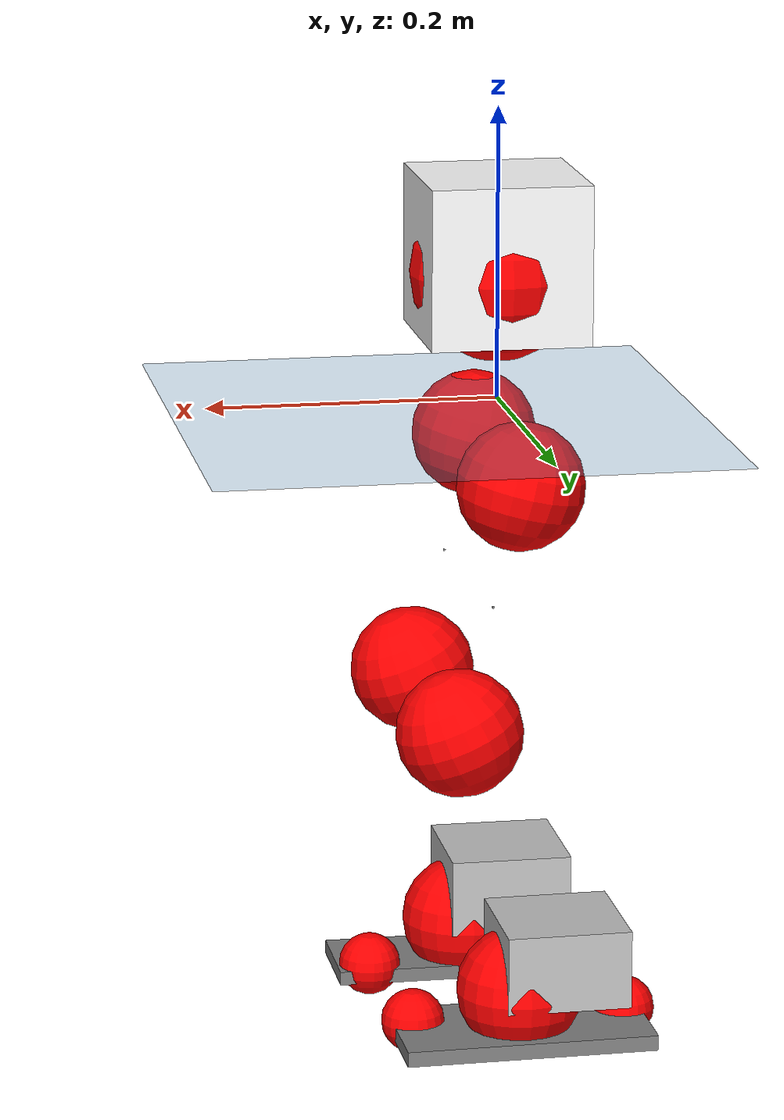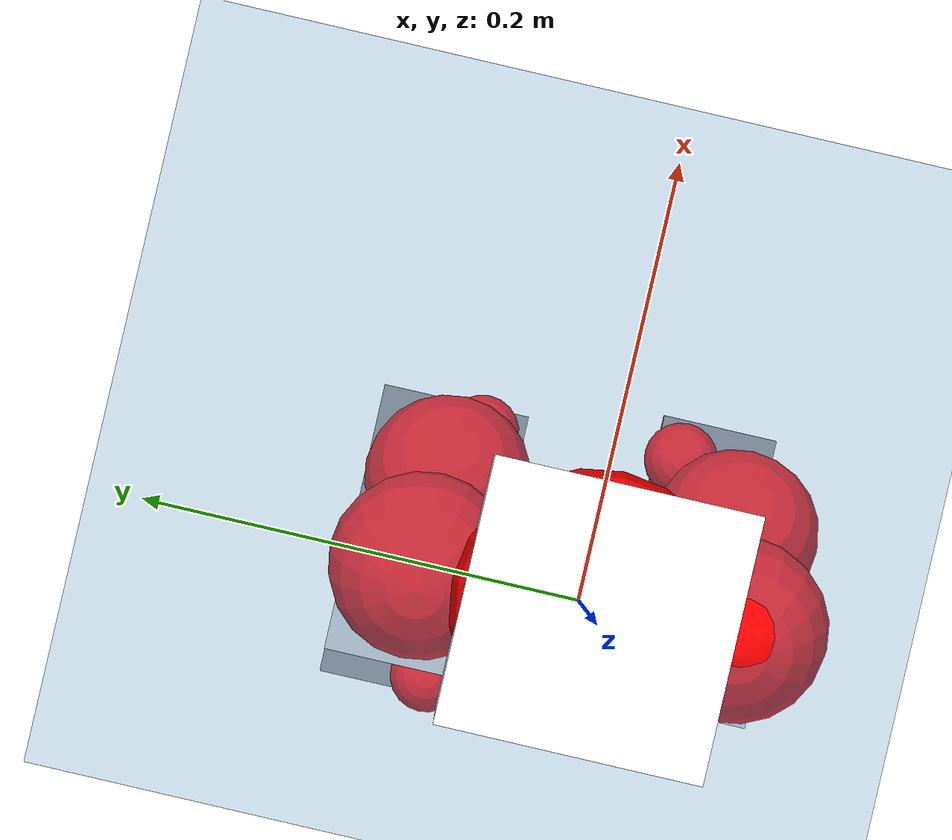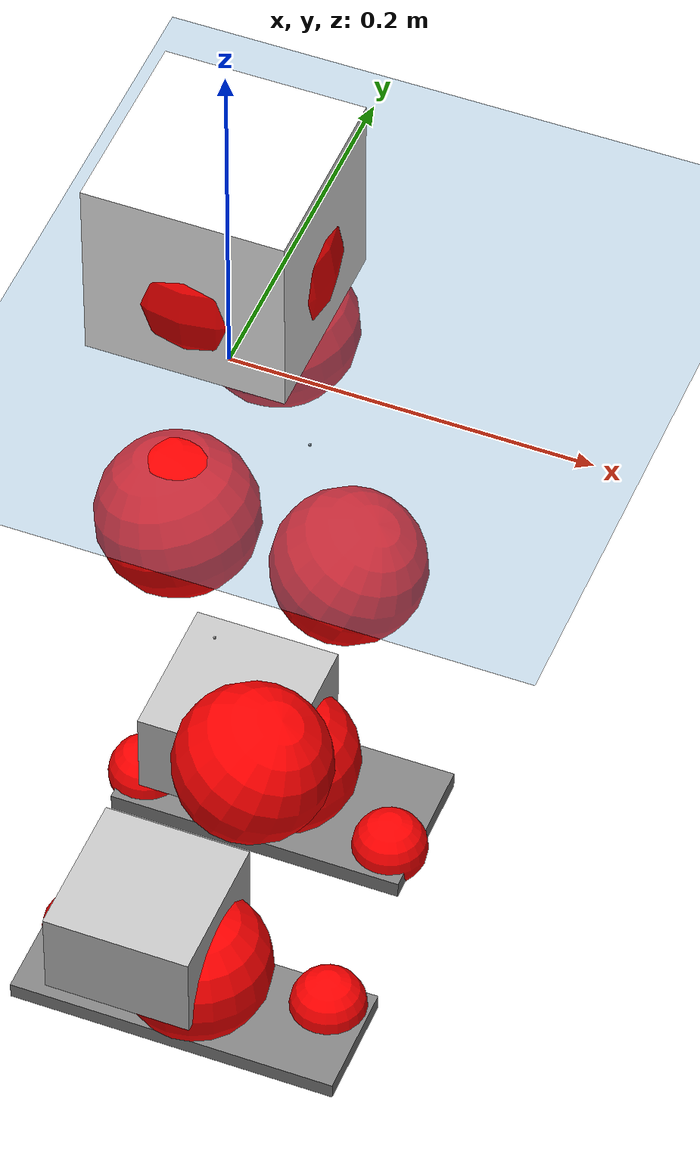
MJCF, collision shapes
<mujoco model="pi_12dof_release_v1">
  <compiler angle="radian" assetdir="assets" balanceinertia="true" inertiafromgeom="false"/>

  <option timestep="0.005" density="1.2" viscosity="2e-05"/>

  <size nkey="1"/>

  <visual>
    <quality shadowsize="8192"/>
    <map shadowclip="0.5"/>
  </visual>

  <default>
    <default class="/">
      <joint armature="0.01" damping="0.01" frictionloss="0.01"/>
      <geom contype="0" conaffinity="0" group="1" solref="-1000 -80"/>
      <site size="0.01 0.005 0.005" group="5"/>
      <general forcelimited="true" biastype="affine" gainprm="20" biasprm="0 -20 -0.5"/>
      <default class="foot">
        <geom size="0.0845 0.036 0.005" type="box" condim="6" group="4" priority="1" friction="0.9 0.2 0.2" solimp="0.015 1 0.005"/>
      </default>
      <default class="reward_collision_sphere">
        <geom group="5" rgba="1 0 0 1"/>
      </default>
    </default>
  </default>

  <asset>
    <texture type="skybox" colorspace="auto" name="//unnamed_texture_0" builtin="gradient" rgb1="0.95 0.95 0.95" rgb2="0.95 0.95 0.95" width="100" height="600"/>
    <texture type="2d" colorspace="auto" name="texplane" builtin="checker" rgb1="0.345 0.575 0.748" rgb2="0.345 0.575 0.748" markrgb="1 1 1" width="512" height="512"/>
    <material name="MatPlane" class="/" texture="texplane" texuniform="true" texrepeat="2 2" specular="0.9"/>
    <mesh name="baselink_1" class="/" file="baselink_1.STL"/>
    <mesh name="r_hip_pitch_link" class="/" file="r_hip_pitch_link.STL"/>
    <mesh name="r_hip_roll_link" class="/" file="r_hip_roll_link.STL"/>
    <mesh name="r_thigh_link" class="/" file="r_thigh_link.STL"/>
    <mesh name="r_calf_link" class="/" file="r_calf_link.STL"/>
    <mesh name="r_ankle_pitch_link" class="/" file="r_ankle_pitch_link.STL"/>
    <mesh name="r_ankle_roll_link" class="/" file="r_ankle_roll_link.STL"/>
    <mesh name="l_hip_pitch_link" class="/" file="l_hip_pitch_link.STL"/>
    <mesh name="l_hip_roll_link" class="/" file="l_hip_roll_link.STL"/>
    <mesh name="l_thigh_link" class="/" file="l_thigh_link.STL"/>
    <mesh name="l_calf_link" class="/" file="l_calf_link.STL"/>
    <mesh name="l_ankle_pitch_link" class="/" file="l_ankle_pitch_link.STL"/>
    <mesh name="l_ankle_roll_link" class="/" file="l_ankle_roll_link.STL"/>
  </asset>

  <worldbody>
    <geom name="floor" class="/" size="100 100 0.125" type="plane" group="0" material="MatPlane"/>
    <light name="toplight_shadow" class="/" pos="0 0 5" dir="0.0990148 0.0990148 -0.990148" type="directional" ambient="0.04 0.04 0.04" diffuse="0.55 0.55 0.55" specular="0.12 0.12 0.12"/>
    <light name="toplight_fill" class="/" pos="0 0 5" dir="0.0990148 0.0990148 -0.990148" type="directional" castshadow="false" ambient="0.04 0.04 0.04" diffuse="0.3 0.3 0.3" specular="0.08 0.08 0.08"/>
    <body name="trunk" pos="-0.000263118 -0.00279135 -0.000985772" quat="1 4.53188e-06 5.38843e-07 2.62694e-06">
      <inertial pos="0.00351127 -0.0029045 0.0501908" quat="0.698699 0.011006 0.011937 0.715232" mass="2.78142" diaginertia="0.0148568 0.00633846 0.0125356"/>
      <joint name="//unnamed_joint_0" type="free"/>
      <geom name="//unnamed_geom_1" class="/" type="mesh" density="0" rgba="1 1 1 1" mesh="baselink_1"/>
      <geom name="//unnamed_geom_2" class="/" size="0.0546485 0.0546485 0.0546485" pos="0 0 0.0998172" type="box" rgba="1 1 1 1"/>
      <geom name="//unnamed_geom_3" class="reward_collision_sphere" size="0.0601134" pos="0 0 0.08734"/>
      <site name="imu" class="/" pos="0.0141078 0.0127796 -0.0139644" size="0.0109297"/>
      <camera name="track" class="/" pos="0 -1.87356 0" quat="0.707107 0.707107 0 0" mode="trackcom"/>
      <camera name="ego_camera" class="/" pos="0.0820814 0 0.224589" quat="-0.5 -0.5 0.5 0.5"/>
      <body name="r_hip_pitch_link" pos="0.00262017 -0.0202974 -0.0393106" quat="0.992228 -0.00125733 -0.124427 -0.000311159">
        <inertial pos="0.00186641 -0.0528715 0.00258334" quat="-0.0195919 0.704369 -0.0330977 0.708791" mass="0.46518" diaginertia="0.000170244 6.76514e-05 0.000250129"/>
        <joint name="r_hip_pitch_joint" class="/" pos="0 0 0" axis="0.000533048 -0.999998 0.00205982" range="-1.74438 1.1988" armature="0.0110528" damping="0.0158902" frictionloss="0.010918"/>
        <geom name="//unnamed_geom_4" class="/" type="mesh" density="0" rgba="0.75294 0.75294 0.75294 1" mesh="r_hip_pitch_link"/>
        <geom name="//unnamed_geom_5" class="/" size="0.000546485 0.000546485 0.000546485" type="box" rgba="0.75294 0.75294 0.75294 1"/>
        <body name="r_hip_roll_link" pos="-0.000714538 -0.051593 -0.000961011" quat="0.999999 -4.50296e-05 -0.000809182 0.00119578">
          <inertial pos="0.0013966 0.00272885 -0.0765797" quat="0.697459 -0.0789096 -0.0873712 0.706888" mass="0.506324" diaginertia="0.000514903 0.000198734 0.000382954"/>
          <joint name="r_hip_roll_joint" class="/" pos="0 0 0" axis="-0.999904 0.0136048 -0.00249166" range="-0.12756 0.550669" armature="0.00929569" damping="0.01993" frictionloss="0.0113313"/>
          <geom name="//unnamed_geom_6" class="/" type="mesh" density="0" rgba="0.75294 0.75294 0.75294 1" mesh="r_hip_roll_link"/>
          <geom name="//unnamed_geom_7" class="/" size="0.000546485 0.000546485 0.000546485" type="box" rgba="0.75294 0.75294 0.75294 1"/>
          <geom name="//unnamed_geom_8" class="reward_collision_sphere" size="0.0437188"/>
          <body name="r_thigh_link" pos="-0.00150411 -0.00184128 -0.08731" quat="0.999999 -0.000517999 -0.00113303 -0.000393457">
            <inertial pos="0.00323157 0.000957849 -0.0607955" quat="0.737775 0.675046 -0.000756036 4.99313e-05" mass="0.149726" diaginertia="0.000190112 7.02367e-05 0.000171972"/>
            <joint name="r_thigh_joint" class="/" pos="0 0 0" axis="-0.000657987 -0.000592714 -1" range="-0.358093 0.59025" armature="0.00995186" damping="0.00206582" frictionloss="0.011222"/>
            <geom name="//unnamed_geom_9" class="/" type="mesh" density="0" rgba="0.75294 0.75294 0.75294 1" mesh="r_thigh_link"/>
            <geom name="//unnamed_geom_10" class="/" size="0.000546485 0.000546485 0.000546485" type="box" rgba="0.75294 0.75294 0.75294 1"/>
            <body name="r_calf_link" pos="1.28289e-05 -0.00350505 -0.0889907" quat="0.947646 4.70128e-06 0.319322 -0.000123414">
              <inertial pos="-0.00207346 -0.000954221 -0.0872106" quat="0.999966 -0.00498448 -0.00192635 0.00629828" mass="1.0175" diaginertia="0.00541685 0.00245973 0.00053951"/>
              <joint name="r_calf_joint" class="/" pos="0 0 0" axis="0.00945684 -0.999929 0.00722372" range="-1.62731 0.695647" armature="0.0108833" damping="0.00878795" frictionloss="0.012157"/>
              <geom name="//unnamed_geom_11" class="/" type="mesh" density="0" rgba="0.75294 0.75294 0.75294 1" mesh="r_calf_link"/>
              <geom name="//unnamed_geom_12" class="/" size="0.000546485 0.000546485 0.000546485" type="box" rgba="0.75294 0.75294 0.75294 1"/>
              <geom name="//unnamed_geom_13" class="reward_collision_sphere" size="0.0437188"/>
              <body name="r_ankle_pitch_link" pos="0.00258993 0.00152098 -0.171644" quat="0.980227 8.35294e-05 -0.197874 -0.000505347">
                <inertial pos="0.00292335 0.00194793 0.000769492" quat="-0.00425833 0.715305 -0.00252881 0.698795" mass="0.245738" diaginertia="0.000493435 0.00016574 0.000367529"/>
                <joint name="r_ankle_pitch_joint" class="/" pos="0 0 0" axis="-0.00626679 -0.999948 0.00801354" range="-1.25332 0.541919" armature="0.0106748" damping="0.0226622" frictionloss="0.0102211"/>
                <geom name="//unnamed_geom_14" class="/" type="mesh" density="0" rgba="0.75294 0.75294 0.75294 1" mesh="r_ankle_pitch_link"/>
                <geom name="//unnamed_geom_15" class="/" size="0.0426259 0.0437188 0.0273243" type="box" rgba="0.75294 0.75294 0.75294 1"/>
                <body name="r_ankle_roll_link" pos="0.0819297 0.00199303 -0.0022268" quat="0.999999 -0.000577901 -0.000119368 0.00111212">
                  <inertial pos="-0.0243411 0.000781853 -0.0153137" quat="0.567704 0.428576 0.438673 0.549181" mass="0.668983" diaginertia="0.00177109 0.000742455 0.000865016"/>
                  <joint name="r_ankle_roll_joint" class="/" pos="0 0 0" axis="-1 6.26662e-05 -0.000608736" stiffness="0.00286521" range="-0.183454 0.162199" armature="0.0108772" damping="0.00287282" frictionloss="0.00965806"/>
                  <geom name="//unnamed_geom_16" class="/" type="mesh" density="0" rgba="0.75294 0.75294 0.75294 1" mesh="r_ankle_roll_link"/>
                  <geom name="//unnamed_geom_17" class="/" type="mesh" rgba="0.75294 0.75294 0.75294 1" mesh="r_ankle_roll_link"/>
                  <geom name="right_foot" class="foot" size="0.0955959 0.0339797 0.00485004" pos="-0.0558154 0 -0.0548994"/>
                  <geom name="//unnamed_geom_19" class="reward_collision_sphere" size="0.0437188" pos="-0.0547209 0 -0.0249543"/>
                  <geom name="//unnamed_geom_20" class="reward_collision_sphere" size="0.0218594" pos="0.0164163 0.0187356 -0.0499086"/>
                  <geom name="//unnamed_geom_21" class="reward_collision_sphere" size="0.0218594" pos="-0.13133 0.0187356 -0.0499086"/>
                  <site name="right_foot" class="foot" pos="-0.0558154 0 -0.0548994" size="0.0109297"/>
                </body>
              </body>
            </body>
          </body>
        </body>
      </body>
      <body name="l_hip_pitch_link" pos="0.000282276 0.0221999 -0.0415833" quat="0.992202 0.000453268 -0.124635 -0.000246424">
        <inertial pos="0.00170517 0.0480806 0.00203024" quat="-0.0389511 0.705984 0.0270858 0.706637" mass="0.523287" diaginertia="0.000205543 7.73717e-05 0.00030948"/>
        <joint name="l_hip_pitch_joint" class="/" pos="0 0 0" axis="-0.000293158 1 0.000270255" stiffness="0.00933997" range="-1.24769 1.74433" armature="0.0110985" damping="4.58301e-05" frictionloss="0.0124664"/>
        <geom name="//unnamed_geom_22" class="/" type="mesh" density="0" rgba="0.75294 0.75294 0.75294 1" mesh="l_hip_pitch_link"/>
        <geom name="//unnamed_geom_23" class="/" size="0.000546485 0.000546485 0.000546485" type="box" rgba="0.75294 0.75294 0.75294 1"/>
        <body name="l_hip_roll_link" pos="-0.00282223 0.0526646 -0.00139669" quat="1 2.57045e-05 -2.46368e-05 9.33404e-06">
          <inertial pos="-0.00332627 0.000968335 -0.0778521" quat="0.705078 -0.0691509 -0.069035 0.702366" mass="0.52378" diaginertia="0.000530575 0.000207991 0.000399975"/>
          <joint name="l_hip_roll_joint" class="/" pos="0 0 0" axis="-0.99992 -0.000471913 -0.0126598" stiffness="1.84994e-05" range="-0.541055 0.110519" armature="0.0123875" damping="0.00220547" frictionloss="0.0116633"/>
          <geom name="//unnamed_geom_24" class="/" type="mesh" density="0" rgba="0.75294 0.75294 0.75294 1" mesh="l_hip_roll_link"/>
          <geom name="//unnamed_geom_25" class="/" size="0.000546485 0.000546485 0.000546485" type="box" rgba="0.75294 0.75294 0.75294 1"/>
          <geom name="//unnamed_geom_26" class="reward_collision_sphere" size="0.0437188"/>
          <body name="l_thigh_link" pos="-0.0030853 -0.00154868 -0.0854162" quat="1 3.70242e-05 -1.41246e-06 -1.85715e-06">
            <inertial pos="0.000403679 -0.00154107 -0.0589813" quat="0.676081 0.736823 0.00045947 -0.0024236" mass="0.157206" diaginertia="0.000209069 7.10609e-05 0.000180287"/>
            <joint name="l_thigh_joint" class="/" pos="0 0 0" axis="0.000203299 0.000145021 -1" range="-0.619963 0.293508" armature="0.00939368" damping="0.0124622" frictionloss="0.0110997"/>
            <geom name="//unnamed_geom_27" class="/" type="mesh" density="0" rgba="0.75294 0.75294 0.75294 1" mesh="l_thigh_link"/>
            <geom name="//unnamed_geom_28" class="/" size="0.000546485 0.000546485 0.000546485" type="box" rgba="0.75294 0.75294 0.75294 1"/>
            <body name="l_calf_link" pos="0.000423898 0.000136294 -0.0897274" quat="0.947348 -0.000171792 0.320204 0.000794631">
              <inertial pos="0.00092746 0.00574773 -0.0901837" quat="0.999984 0.0031118 -0.000115634 0.00472387" mass="1.09171" diaginertia="0.00590728 0.0026496 0.0005594"/>
              <joint name="l_calf_joint" class="/" pos="0 0 0" axis="0.014545 0.999864 0.00774132" range="-0.654074 1.62262" armature="0.0112446" damping="0.00913149" frictionloss="0.0115428"/>
              <geom name="//unnamed_geom_29" class="/" type="mesh" density="0" rgba="0.75294 0.75294 0.75294 1" mesh="l_calf_link"/>
              <geom name="//unnamed_geom_30" class="/" size="0.000546485 0.000546485 0.000546485" type="box" rgba="0.75294 0.75294 0.75294 1"/>
              <geom name="//unnamed_geom_31" class="reward_collision_sphere" size="0.0437188"/>
              <body name="l_ankle_pitch_link" pos="0.000306192 0.00393004 -0.17401" quat="0.980154 0.00048994 -0.198233 0.000923956">
                <inertial pos="0.00559977 -0.00326632 0.00254078" quat="-0.00230988 0.707783 0.000972027 0.706425" mass="0.220925" diaginertia="0.000461443 0.000154638 0.000350655"/>
                <joint name="l_ankle_pitch_joint" class="/" pos="0 0 0" axis="-0.00246443 0.999996 -0.00117686" range="-0.560842 1.36021" armature="0.0103557" damping="0.00781447" frictionloss="0.0109823"/>
                <geom name="//unnamed_geom_32" class="/" type="mesh" density="0" rgba="0.75294 0.75294 0.75294 1" mesh="l_ankle_pitch_link"/>
                <geom name="//unnamed_geom_33" class="/" size="0.0426259 0.0437188 0.0273243" type="box" rgba="0.75294 0.75294 0.75294 1"/>
                <body name="l_ankle_roll_link" pos="0.0815216 0.00247833 0.00157348" quat="0.999999 6.53464e-05 0.000679035 0.000848498">
                  <inertial pos="-0.0248969 0.000127711 -0.0189335" quat="0.562529 0.424757 0.433069 0.561777" mass="0.687746" diaginertia="0.00183791 0.000743679 0.000857121"/>
                  <joint name="l_ankle_roll_joint" class="/" pos="0 0 0" axis="-0.999973 -0.00258649 -0.00683673" range="-0.120504 0.0966871" armature="0.0119904" damping="0.0209752" frictionloss="0.00952814"/>
                  <geom name="//unnamed_geom_34" class="/" type="mesh" density="0" rgba="0.75294 0.75294 0.75294 1" mesh="l_ankle_roll_link"/>
                  <geom name="//unnamed_geom_35" class="/" type="mesh" rgba="0.75294 0.75294 0.75294 1" mesh="l_ankle_roll_link"/>
                  <geom name="left_foot" class="foot" size="0.0868082 0.0436306 0.00528886" pos="-0.0558154 0 -0.0548994"/>
                  <geom name="//unnamed_geom_37" class="reward_collision_sphere" size="0.0437188" pos="-0.0547209 0 -0.0249543"/>
                  <geom name="//unnamed_geom_38" class="reward_collision_sphere" size="0.0218594" pos="0.0164163 -0.0187356 -0.0499086"/>
                  <geom name="//unnamed_geom_39" class="reward_collision_sphere" size="0.0218594" pos="-0.13133 -0.0187356 -0.0499086"/>
                  <site name="left_foot" class="foot" pos="-0.0558154 0 -0.0548994" size="0.0109297"/>
                </body>
              </body>
            </body>
          </body>
        </body>
      </body>
    </body>
  </worldbody>

  <contact>
    <pair class="/" geom1="floor" geom2="right_foot" name="//unnamed_contact_1"/>
    <pair class="/" geom1="floor" geom2="left_foot" name="//unnamed_contact_0"/>
  </contact>

  <actuator>
    <general name="r_hip_pitch_joint" class="/" joint="r_hip_pitch_joint" forcerange="-22.8139 22.8139" gainprm="20.4653" biasprm="0 -20.4653 -0.548081"/>
    <general name="r_hip_roll_joint" class="/" joint="r_hip_roll_joint" forcerange="-22.7218 22.7218" gainprm="20.4653" biasprm="0 -20.4653 -0.548081"/>
    <general name="r_thigh_joint" class="/" joint="r_thigh_joint" forcerange="-25.4451 25.4451" gainprm="20.4653" biasprm="0 -20.4653 -0.548081"/>
    <general name="r_calf_joint" class="/" joint="r_calf_joint" forcerange="-20.8449 20.8449" gainprm="20.4653" biasprm="0 -20.4653 -0.548081"/>
    <general name="r_ankle_pitch_joint" class="/" joint="r_ankle_pitch_joint" forcerange="-24.7256 24.7256" gainprm="20.4653" biasprm="0 -20.4653 -0.548081"/>
    <general name="r_ankle_roll_joint" class="/" joint="r_ankle_roll_joint" forcerange="-24.7121 24.7121" gainprm="20.4653" biasprm="0 -20.4653 -0.548081"/>
    <general name="l_hip_pitch_joint" class="/" joint="l_hip_pitch_joint" forcerange="-24.0025 24.0025" gainprm="20.4653" biasprm="0 -20.4653 -0.548081"/>
    <general name="l_hip_roll_joint" class="/" joint="l_hip_roll_joint" forcerange="-20.5595 20.5595" gainprm="20.4653" biasprm="0 -20.4653 -0.548081"/>
    <general name="l_thigh_joint" class="/" joint="l_thigh_joint" forcerange="-22.3368 22.3368" gainprm="20.4653" biasprm="0 -20.4653 -0.548081"/>
    <general name="l_calf_joint" class="/" joint="l_calf_joint" forcerange="-24.6908 24.6908" gainprm="20.4653" biasprm="0 -20.4653 -0.548081"/>
    <general name="l_ankle_pitch_joint" class="/" joint="l_ankle_pitch_joint" forcerange="-24.69 24.69" gainprm="20.4653" biasprm="0 -20.4653 -0.548081"/>
    <general name="l_ankle_roll_joint" class="/" joint="l_ankle_roll_joint" forcerange="-25.3477 25.3477" gainprm="20.4653" biasprm="0 -20.4653 -0.548081"/>
  </actuator>

  <sensor>
    <gyro site="imu" name="imu_angular_velocity"/>
    <velocimeter site="imu" name="imu_linear_velocity"/>
    <framelinvel objtype="site" objname="left_foot" name="left_foot_global_linear_velocity"/>
    <framelinvel objtype="site" objname="right_foot" name="right_foot_global_linear_velocity"/>
  </sensor>

  <keyframe>
    <key name="home" qpos="0 0 0.291 1 0 0 0 0.4 0 0 -0.8 0.4 0 -0.4 0 0 0.8 -0.4 0"/>
  </keyframe>
</mujoco>
